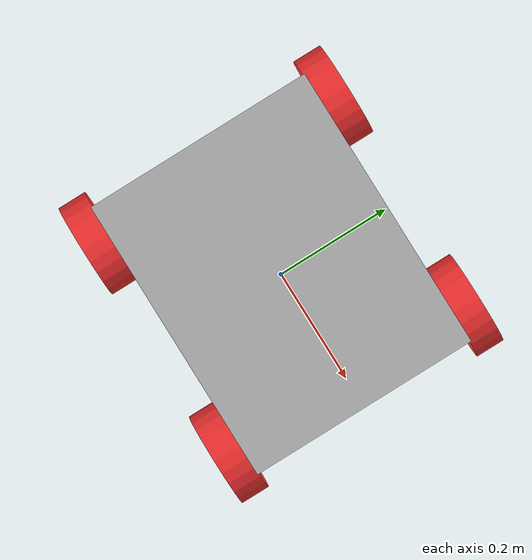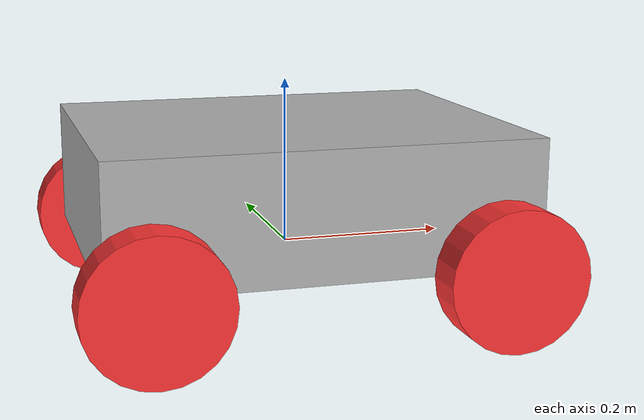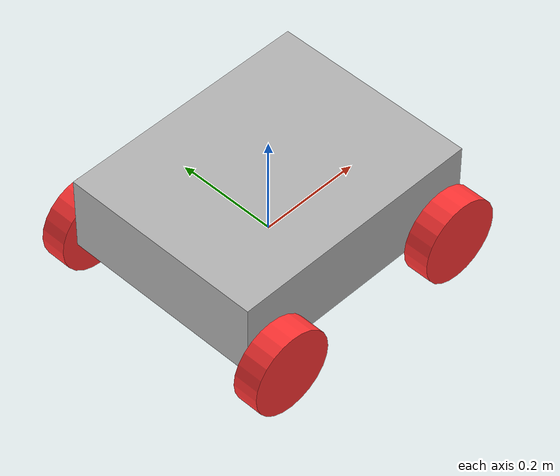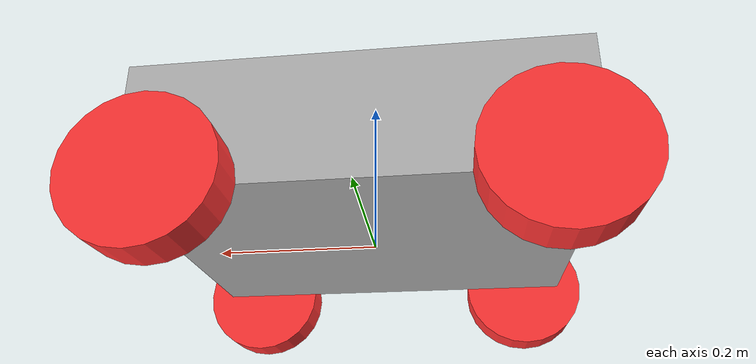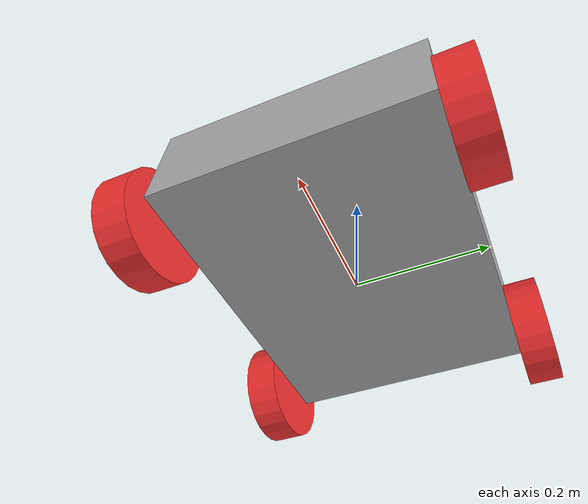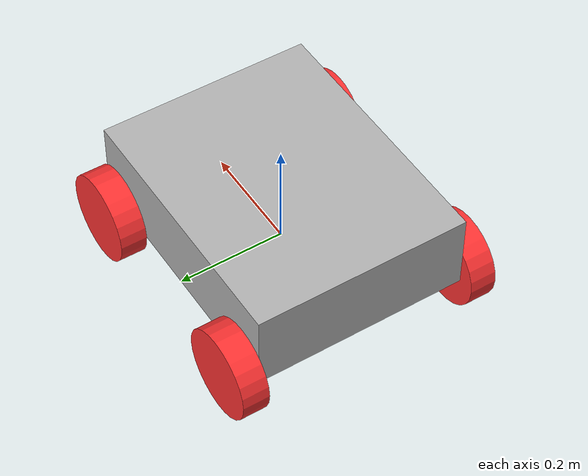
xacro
<?xml version="1.0"?>
<robot xmlns:xacro="http://www.ros.org/wiki/xacro" name="robot_core_4Wheels">

    <!--COLORS-->
    <material name="white">
        <color rgba="1 1 1 1"/>
    </material>

    <material name="black">
        <color rgba="0 0 0 1"/>
    </material>

    <material name="LightGrey">
        <color rgba="0.7 0.7 0.7 1.0"/>
    </material>

    <material name="blue">
        <color rgba="0.2 0.2 1 1"/>
    </material>

    <material name="green">
        <color rgba="0.2 1 0.2 1"/>
    </material>

    <material name="red">
        <color rgba="1 0.2 0.2 1"/>
    </material>

    <!--DESIGN-->
    <xacro:property name="chassis_x" value="0.5"/>
    <xacro:property name="chassis_y" value="0.4"/>
    <xacro:property name="chassis_z" value="0.15"/>
    <xacro:property name="wheel_radius" value="0.08255"/>
    <xacro:property name="wheel_length" value="0.05"/>
    <xacro:property name="chassis_mass" value="10"/>
    <xacro:property name="wheel_mass" value="3.0"/>s
    <xacro:property name="back_wheel_origin_x" value="-0.2"/>
    <xacro:property name="front_wheel_origin_x" value="0.2"/>
    <xacro:property name="wheel_origin_y" value="0.225"/> <!--chassis_y/2 + wheel_lenth/2 + 0.002 clearance-->

    <!--base-->
    <link name="base_link"></link>

    <joint name="chassis_joint" type="fixed">
        <parent link="base_link"/>
        <child link="chassis"/>
        <origin xyz="0.0 0.0 0.0" rpy="0.0 0.0 0.0"/>
    </joint>

    <link name="chassis">
        <visual>
            <geometry>
                <box size="${chassis_x} ${chassis_y} ${chassis_z}" />
            </geometry>
            <material name="LightGrey"/>
            <origin xyz="0.0 0.0 ${chassis_z/2}" rpy="0.0 0.0 0.0"/>
        </visual>
        <collision>
            <geometry>
                <box size="${chassis_x} ${chassis_y} ${chassis_z}" />
            </geometry>
        </collision>
        <xacro:inertial_box mass="${chassis_mass}" x="${chassis_x/2}" y="${chassis_y}" z="${chassis_z}">
            <origin xyz="0.0 0.0 ${chassis_z/2}" rpy="0.0 0.0 0.0"/>
        </xacro:inertial_box>
    </link>

    <gazebo reference="chassis">
        <material>Gazebo/White</material>
    </gazebo>

    <!--left wheel back-->
    <joint name="left_wheel_back_joint" type="continuous">
        <origin xyz="${back_wheel_origin_x} ${wheel_origin_y} 0.0" rpy="${-pi/2} ${-pi} 0.0"/>
        <parent link="chassis"/>
        <child link="left_wheel_back"/>
        <axis xyz="0.0 0.0 1.0"/>
    </joint>

    <link name="left_wheel_back">
        <visual>
            <geometry>
                <cylinder radius="${wheel_radius}" length="${wheel_length}"/>
            </geometry>
            <material name="red"/>
        </visual>
        <collision>
            <geometry>
                <sphere radius="${wheel_radius}"/>
            </geometry>
        </collision>
        <xacro:inertial_cylinder mass="${wheel_mass}" length="${wheel_length}" radius="${wheel_radius}">
            <origin xyz="${back_wheel_origin_x} ${wheel_origin_y} 0.0" rpy="${-pi/2} 0.0 0.0"/>
        </xacro:inertial_cylinder>
    </link>

    <gazebo reference="left_wheel_back">
        <material>Gazebo/Black</material>
    </gazebo>

     <!--right wheel back-->
    <joint name="right_wheel_back_joint" type="continuous">
        <origin xyz="${back_wheel_origin_x} ${-wheel_origin_y} 0.0" rpy="${pi/2} 0.0 0.0"/>
        <parent link="chassis"/>
        <child link="right_wheel_back"/>
        <axis xyz="0.0 0.0 -1.0"/>
    </joint>

    <link name="right_wheel_back">
        <visual>
            <geometry>
                <cylinder radius="${wheel_radius}" length="${wheel_length}"/>
            </geometry>
            <material name="red"/>
        </visual>
        <collision>
            <geometry>
                <sphere radius="${wheel_radius}"/>
            </geometry>
        </collision>
        <xacro:inertial_cylinder mass="${wheel_mass}" length="${wheel_length}" radius="${wheel_radius}">
            <origin xyz="${back_wheel_origin_x} ${-wheel_origin_y} 0.0" rpy="${pi/2} 0.0 0.0"/>
        </xacro:inertial_cylinder>
    </link>

    <gazebo reference="right_wheel_back">
        <material>Gazebo/Black</material>
    </gazebo>

    <!--left wheel front-->
    <joint name="left_wheel_front_joint" type="continuous">
        <origin xyz="${front_wheel_origin_x} ${wheel_origin_y} 0.0" rpy="${-pi/2} ${-pi} 0.0"/>
        <parent link="chassis"/>
        <child link="left_wheel_front"/>
        <axis xyz="0.0 0.0 1.0"/>
    </joint>

    <link name="left_wheel_front">
        <visual>
            <geometry>
                <cylinder radius="${wheel_radius}" length="${wheel_length}"/>
            </geometry>
            <material name="red"/>
        </visual>
        <collision>
            <geometry>
                <sphere radius="${wheel_radius}"/>
            </geometry>
        </collision>
        <xacro:inertial_cylinder mass="${wheel_mass}" length="${wheel_length}" radius="${wheel_radius}">
            <origin xyz="${front_wheel_origin_x} ${wheel_origin_y} 0.0" rpy="${-pi/2} 0.0 0.0"/>
        </xacro:inertial_cylinder>
    </link>

    <gazebo reference="left_wheel_front">
        <material>Gazebo/Black</material>
    </gazebo>

     <!--right wheel front-->
    <joint name="right_wheel_front_joint" type="continuous">
        <origin xyz="${front_wheel_origin_x} ${-wheel_origin_y} 0.0" rpy="${pi/2} 0.0 0.0"/>
        <parent link="chassis"/>
        <child link="right_wheel_front"/>
        <axis xyz="0.0 0.0 -1.0"/>
    </joint>

    <link name="right_wheel_front">
        <visual>
            <geometry>
                <cylinder radius="${wheel_radius}" length="${wheel_length}"/>
            </geometry>
            <material name="red"/>
        </visual>
        <collision>
            <geometry>
                <sphere radius="${wheel_radius}"/>
            </geometry>
        </collision>
        <xacro:inertial_cylinder mass="${wheel_mass}" length="${wheel_length}" radius="${wheel_radius}">
            <origin xyz="${-front_wheel_origin_x} ${-wheel_origin_y} 0.0" rpy="${pi/2} 0.0 0.0"/>
        </xacro:inertial_cylinder>
    </link>

    <gazebo reference="right_wheel_front">
        <material>Gazebo/Black</material>
    </gazebo>

</robot>
